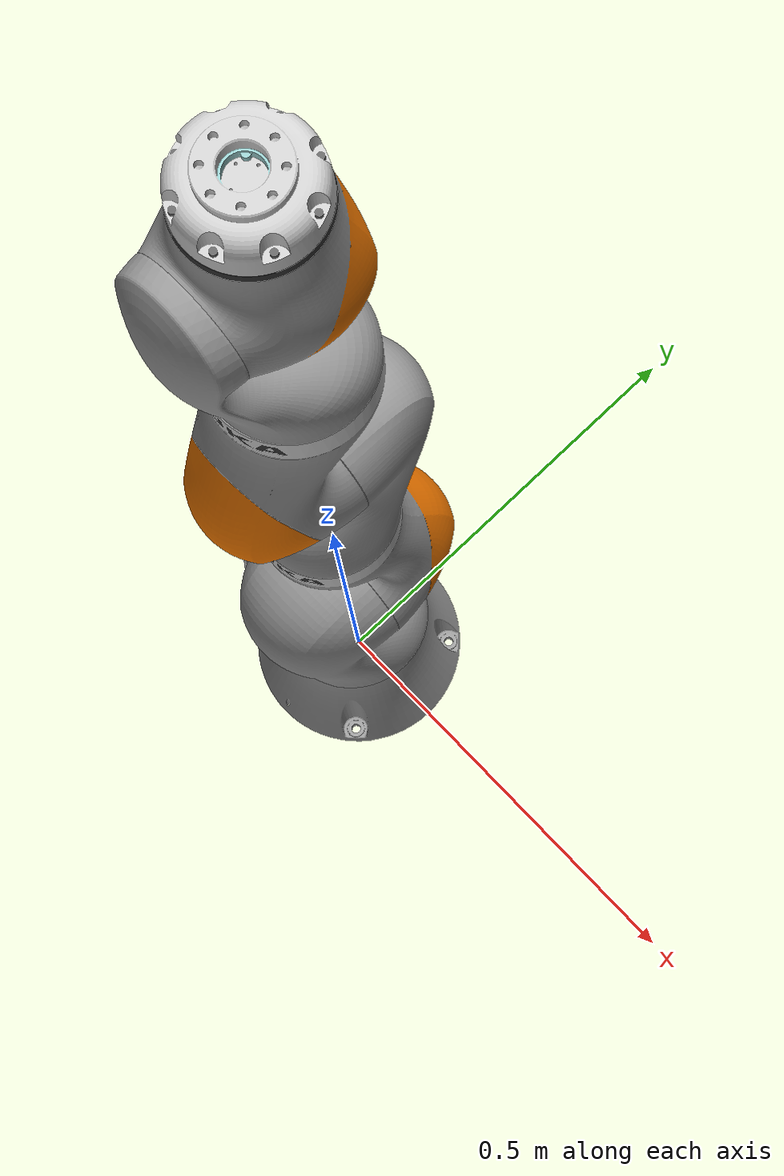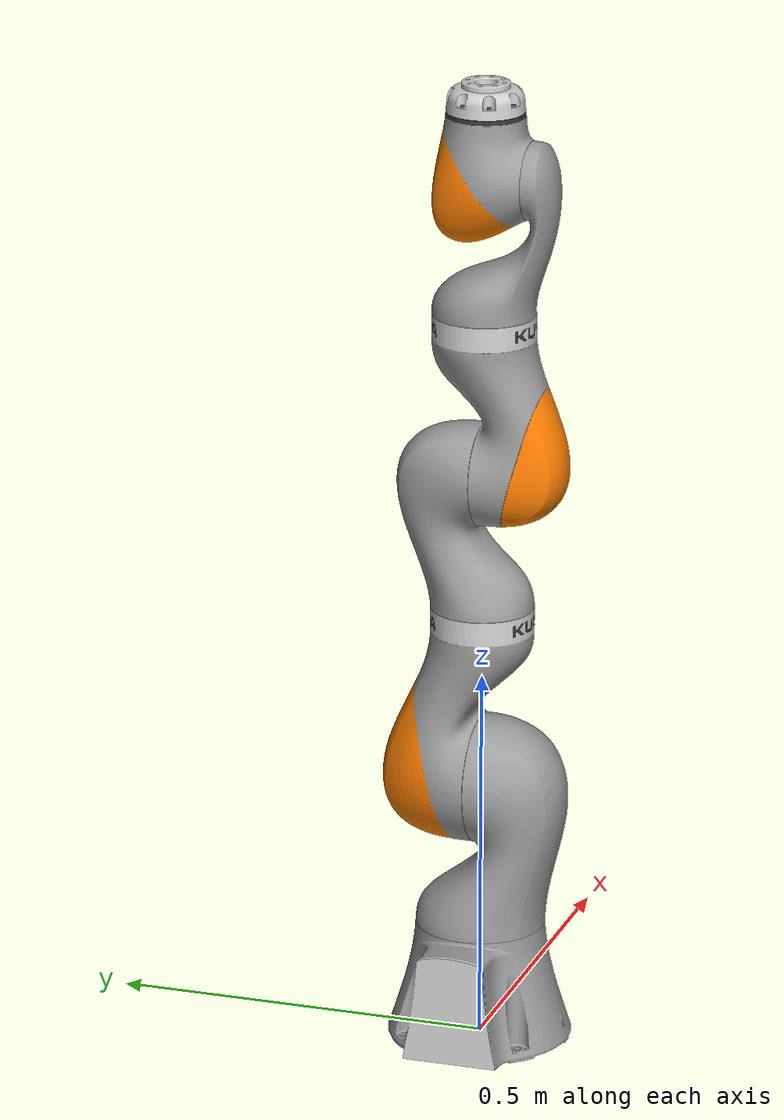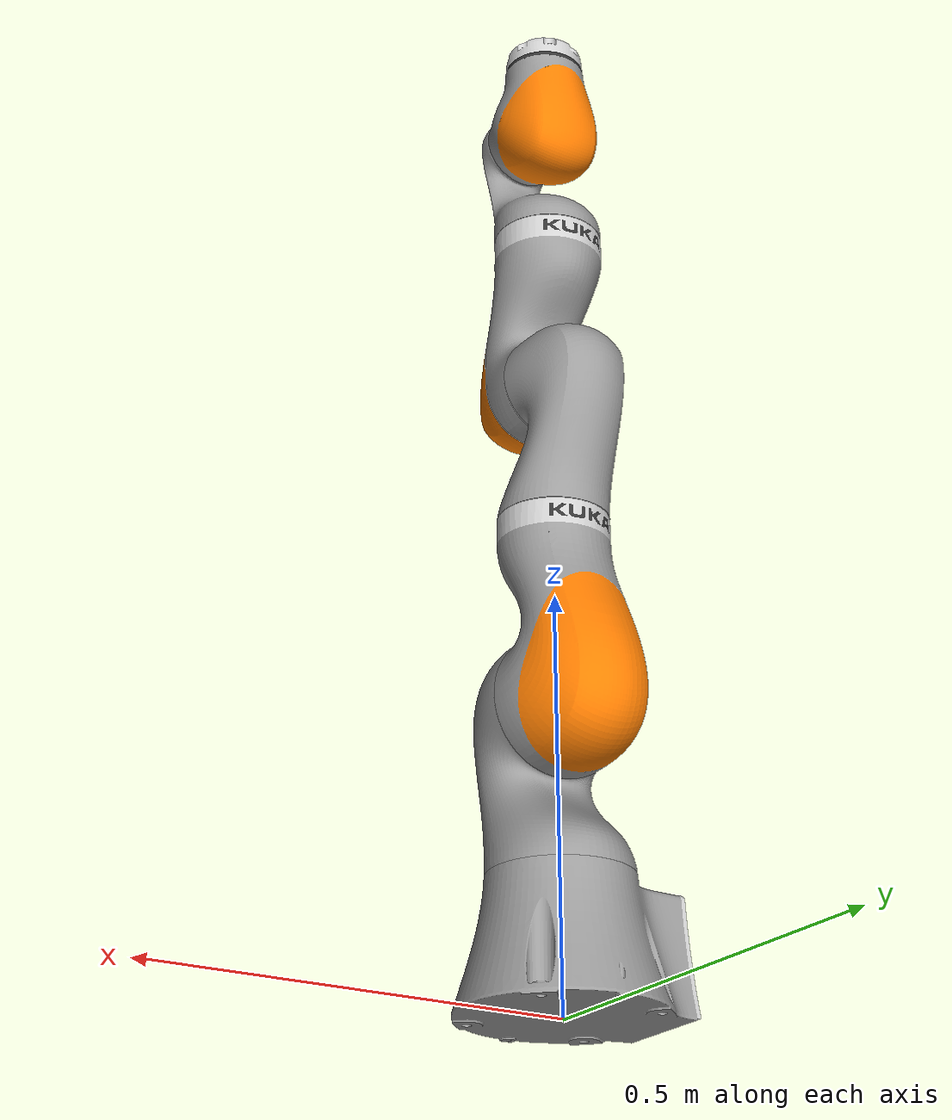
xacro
<?xml version="1.0"?>

<!-- top level -->
<robot name="iiwa14" xmlns:xacro="http://www.ros.org/wiki/xacro">

    <!-- include the iiwa macro and controller -->
    <xacro:include filename="$(find lbr_description)/urdf/iiwa14/iiwa14.urdf.xacro" />
    <xacro:include filename="$(find lbr_description)/gazebo/lbr_gazebo.xacro" />
    <xacro:include filename="$(find lbr_description)/ros2_control/lbr_system_interface.xacro" />

    <!-- arguments -->
    <xacro:arg name="robot_name" default="lbr" />
    <xacro:arg name="mode" default="true" />
    <xacro:arg
        name="joint_limits_path"
        default="$(find lbr_description)/urdf/iiwa14/joint_limits.yaml" />
    <xacro:arg
        name="system_config_path"
        default="$(find lbr_description)/ros2_control/lbr_system_config.yaml" />
    <xacro:arg
        name="initial_joint_positions_path"
        default="$(find lbr_description)/ros2_control/initial_joint_positions.yaml" />

    <!-- KDL requires a link without inertia / Gazebo requires a connection to world link or robot
    will tipple https://github.com/lbr-stack/lbr_fri_ros2_stack/issues/230 -->
    <link name="world" />

    <joint name="$(arg robot_name)_world_joint" type="fixed">
        <parent link="world" />
        <child link="$(arg robot_name)_link_0" />
    </joint>

    <!-- macros for gazebo / mock / hardware -->
    <xacro:lbr_gazebo robot_name="$(arg robot_name)" />
    <xacro:lbr_system_interface
        robot_name="$(arg robot_name)"
        mode="$(arg mode)"
        system_config_path="$(arg system_config_path)"
        initial_joint_positions_path="$(arg initial_joint_positions_path)" />

    <!-- iiwa description -->
    <xacro:iiwa14
        robot_name="$(arg robot_name)"
        joint_limits_path="$(arg joint_limits_path)" />
</robot>

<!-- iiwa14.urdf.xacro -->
<robot xmlns:xacro="http://www.ros.org/wiki/xacro">
    <!-- robot as extracted via https://github.com/syuntoku14/fusion2urdf -->
    <xacro:macro name="iiwa14"
        params="robot_name:=^|lbr joint_limits_path:=^|'$(find lbr_description)/urdf/iiwa14/joint_limits.yaml'">

        <!-- load joint limits via yaml -->
        <xacro:property name="joint_limits" value="${xacro.load_yaml(joint_limits_path)}" />

        <!-- constants -->
        <xacro:property name="PI" value="3.1415926535897931" />
        <xacro:property name="joint_damping" value="10.0" />
        <xacro:property name="joint_friction" value="0.1" />

        <!-- links and joints -->
        <link name="${robot_name}_link_0">
            <inertial>
                <origin rpy="0 0 0" xyz="-0.012822 0.0 0.071507" />
                <mass value="7.050378" />
                <inertia ixx="0.031226" ixy="0.0" ixz="0.000871" iyy="0.039697" iyz="0.0"
                    izz="0.043102" />
            </inertial>
            <visual>
                <origin rpy="0 0 0" xyz="0 0 0" />
                <geometry>
                    <mesh filename="package://lbr_description/meshes/iiwa14/visual/link_0.dae" />
                </geometry>
            </visual>
            <collision>
                <origin rpy="0 0 0" xyz="0 0 0" />
                <geometry>
                    <mesh filename="package://lbr_description/meshes/iiwa14/collision/link_0.stl" />
                </geometry>
            </collision>
        </link>

        <joint name="${robot_name}_A1" type="revolute">
            <origin rpy="0 0 0" xyz="0.0 0.0 0.1475" />
            <parent link="${robot_name}_link_0" />
            <child link="${robot_name}_link_1" />
            <axis xyz="0.0 0.0 1.0" />
            <limit
                effort="${joint_limits['A1']['effort']}"
                lower="${joint_limits['A1']['lower'] * PI / 180}"
                upper="${joint_limits['A1']['upper'] * PI / 180}"
                velocity="${joint_limits['A1']['velocity'] * PI / 180}" />
            <safety_controller
                soft_lower_limit="${joint_limits['A1']['lower'] * PI / 180}"
                soft_upper_limit="${joint_limits['A1']['upper'] * PI / 180}"
                k_position="${joint_limits['A1']['velocity'] / joint_limits['A1']['safety_position_margin']}"
                k_velocity="${joint_limits['A1']['k_velocity']}" />
            <dynamics damping="${joint_damping}" friction="${joint_friction}" />
        </joint>

        <link name="${robot_name}_link_1">
            <inertial>
                <origin rpy="0 0 0" xyz="0.0 -0.033795 0.132404" />
                <mass value="5.289529" />
                <inertia ixx="0.042462" ixy="0.0" ixz="0.0" iyy="0.042838" iyz="0.006341"
                    izz="0.01587" />
            </inertial>
            <visual>
                <origin rpy="0 0 0" xyz="0.0 0.0 -0.1475" />
                <geometry>
                    <mesh filename="package://lbr_description/meshes/iiwa14/visual/link_1.dae" />
                </geometry>
            </visual>
            <collision>
                <origin rpy="0 0 0" xyz="0.0 0.0 -0.1475" />
                <geometry>
                    <mesh filename="package://lbr_description/meshes/iiwa14/collision/link_1.stl" />
                </geometry>
            </collision>
        </link>

        <joint name="${robot_name}_A2" type="revolute">
            <origin rpy="0 0 0" xyz="0.0 -0.01 0.2125" />
            <parent link="${robot_name}_link_1" />
            <child link="${robot_name}_link_2" />
            <axis xyz="0.0 1.0 0.0" />
            <limit
                effort="${joint_limits['A2']['effort']}"
                lower="${joint_limits['A2']['lower'] * PI / 180}"
                upper="${joint_limits['A2']['upper'] * PI / 180}"
                velocity="${joint_limits['A2']['velocity'] * PI / 180}" />
            <safety_controller
                soft_lower_limit="${joint_limits['A2']['lower'] * PI / 180}"
                soft_upper_limit="${joint_limits['A2']['upper'] * PI / 180}"
                k_position="${joint_limits['A2']['velocity'] / joint_limits['A2']['safety_position_margin']}"
                k_velocity="${joint_limits['A2']['k_velocity']}" />
            <dynamics damping="${joint_damping}" friction="${joint_friction}" />
        </joint>

        <link name="${robot_name}_link_2">
            <inertial>
                <origin rpy="0 0 0" xyz="0.000136 0.047548 0.076322" />
                <mass value="5.688888" />
                <inertia ixx="0.055182" ixy="-3.3e-05" ixz="5.6e-05" iyy="0.053983" iyz="0.010034"
                    izz="0.016523" />
            </inertial>
            <visual>
                <origin rpy="0 0 0" xyz="0.0 0.01 -0.36" />
                <geometry>
                    <mesh filename="package://lbr_description/meshes/iiwa14/visual/link_2.dae" />
                </geometry>
            </visual>
            <collision>
                <origin rpy="0 0 0" xyz="0.0 0.01 -0.36" />
                <geometry>
                    <mesh filename="package://lbr_description/meshes/iiwa14/collision/link_2.stl" />
                </geometry>
            </collision>
        </link>

        <joint name="${robot_name}_A3" type="revolute">
            <origin rpy="0 0 0" xyz="0.0 0.01 0.228" />
            <parent link="${robot_name}_link_2" />
            <child link="${robot_name}_link_3" />
            <axis xyz="0.0 0.0 1.0" />
            <limit
                effort="${joint_limits['A3']['effort']}"
                lower="${joint_limits['A3']['lower'] * PI / 180}"
                upper="${joint_limits['A3']['upper'] * PI / 180}"
                velocity="${joint_limits['A3']['velocity'] * PI / 180}" />
            <safety_controller
                soft_lower_limit="${joint_limits['A3']['lower'] * PI / 180}"
                soft_upper_limit="${joint_limits['A3']['upper'] * PI / 180}"
                k_position="${joint_limits['A3']['velocity'] / joint_limits['A3']['safety_position_margin']}"
                k_velocity="${joint_limits['A3']['k_velocity']}" />
            <dynamics damping="${joint_damping}" friction="${joint_friction}" />
        </joint>

        <link name="${robot_name}_link_3">
            <inertial>
                <origin rpy="0 0 0" xyz="0.0 0.034913 0.123108" />
                <mass value="3.461245" />
                <inertia ixx="0.02172" ixy="0.0" ixz="0.0" iyy="0.02073" iyz="-0.003845"
                    izz="0.007701" />
            </inertial>
            <visual>
                <origin rpy="0 0 0" xyz="0.0 0.0 -0.588" />
                <geometry>
                    <mesh filename="package://lbr_description/meshes/iiwa14/visual/link_3.dae" />
                </geometry>
            </visual>
            <collision>
                <origin rpy="0 0 0" xyz="0.0 0.0 -0.588" />
                <geometry>
                    <mesh filename="package://lbr_description/meshes/iiwa14/collision/link_3.stl" />
                </geometry>
            </collision>
        </link>

        <joint name="${robot_name}_A4" type="revolute">
            <origin rpy="0 0 0" xyz="0.0 0.0105 0.192" />
            <parent link="${robot_name}_link_3" />
            <child link="${robot_name}_link_4" />
            <axis xyz="0.0 -1.0 0.0" />
            <limit
                effort="${joint_limits['A4']['effort']}"
                lower="${joint_limits['A4']['lower'] * PI / 180}"
                upper="${joint_limits['A4']['upper'] * PI / 180}"
                velocity="${joint_limits['A4']['velocity'] * PI / 180}" />
            <safety_controller
                soft_lower_limit="${joint_limits['A4']['lower'] * PI / 180}"
                soft_upper_limit="${joint_limits['A4']['upper'] * PI / 180}"
                k_position="${joint_limits['A4']['velocity'] / joint_limits['A4']['safety_position_margin']}"
                k_velocity="${joint_limits['A4']['k_velocity']}" />
            <dynamics damping="${joint_damping}" friction="${joint_friction}" />
        </joint>

        <link name="${robot_name}_link_4">
            <inertial>
                <origin rpy="0 0 0" xyz="0.0 -0.039793 0.086944" />
                <mass value="4.122995" />
                <inertia ixx="0.03241" ixy="0.0" ixz="0.0" iyy="0.030758" iyz="-0.006022"
                    izz="0.009883" />
            </inertial>
            <visual>
                <origin rpy="0 0 0" xyz="0.0 -0.0105 -0.78" />
                <geometry>
                    <mesh filename="package://lbr_description/meshes/iiwa14/visual/link_4.dae" />
                </geometry>
            </visual>
            <collision>
                <origin rpy="0 0 0" xyz="0.0 -0.0105 -0.78" />
                <geometry>
                    <mesh filename="package://lbr_description/meshes/iiwa14/collision/link_4.stl" />
                </geometry>
            </collision>
        </link>

        <joint name="${robot_name}_A5" type="revolute">
            <origin rpy="0 0 0" xyz="0.0 -0.0105 0.2075" />
            <parent link="${robot_name}_link_4" />
            <child link="${robot_name}_link_5" />
            <axis xyz="0.0 0.0 1.0" />
            <limit
                effort="${joint_limits['A5']['effort']}"
                lower="${joint_limits['A5']['lower'] * PI / 180}"
                upper="${joint_limits['A5']['upper'] * PI / 180}"
                velocity="${joint_limits['A5']['velocity'] * PI / 180}" />
            <safety_controller
                soft_lower_limit="${joint_limits['A5']['lower'] * PI / 180}"
                soft_upper_limit="${joint_limits['A5']['upper'] * PI / 180}"
                k_position="${joint_limits['A5']['velocity'] / joint_limits['A5']['safety_position_margin']}"
                k_velocity="${joint_limits['A5']['k_velocity']}" />
            <dynamics damping="${joint_damping}" friction="${joint_friction}" />
        </joint>

        <link name="${robot_name}_link_5">
            <inertial>
                <origin rpy="0 0 0" xyz="0.0 -0.029824 0.076267" />
                <mass value="1.563756" />
                <inertia ixx="0.008677" ixy="0.0" ixz="0.0" iyy="0.007297" iyz="0.002869"
                    izz="0.003935" />
            </inertial>
            <visual>
                <origin rpy="0 0 0" xyz="0.0 0.0 -0.9875" />
                <geometry>
                    <mesh filename="package://lbr_description/meshes/iiwa14/visual/link_5.dae" />
                </geometry>
            </visual>
            <collision>
                <origin rpy="0 0 0" xyz="0.0 0.0 -0.9875" />
                <geometry>
                    <mesh filename="package://lbr_description/meshes/iiwa14/collision/link_5.stl" />
                </geometry>
            </collision>
        </link>

        <joint name="${robot_name}_A6" type="revolute">
            <origin rpy="0 0 0" xyz="0.0 -0.0707 0.1925" />
            <parent link="${robot_name}_link_5" />
            <child link="${robot_name}_link_6" />
            <axis xyz="0.0 1.0 0.0" />
            <limit
                effort="${joint_limits['A6']['effort']}"
                lower="${joint_limits['A6']['lower'] * PI / 180}"
                upper="${joint_limits['A6']['upper'] * PI / 180}"
                velocity="${joint_limits['A6']['velocity'] * PI / 180}" />
            <safety_controller
                soft_lower_limit="${joint_limits['A6']['lower'] * PI / 180}"
                soft_upper_limit="${joint_limits['A6']['upper'] * PI / 180}"
                k_position="${joint_limits['A6']['velocity'] / joint_limits['A6']['safety_position_margin']}"
                k_velocity="${joint_limits['A6']['k_velocity']}" />
            <dynamics damping="${joint_damping}" friction="${joint_friction}" />
        </joint>

        <link name="${robot_name}_link_6">
            <inertial>
                <origin rpy="0 0 0" xyz="0.0 0.07102 0.00495" />
                <mass value="2.457878" />
                <inertia ixx="0.007227" ixy="0.0" ixz="0.0" iyy="0.006958" iyz="0.000318"
                    izz="0.004734" />
            </inertial>
            <visual>
                <origin rpy="0 0 0" xyz="0.0 0.0707 -1.18" />
                <geometry>
                    <mesh filename="package://lbr_description/meshes/iiwa14/visual/link_6.dae" />
                </geometry>
            </visual>
            <collision>
                <origin rpy="0 0 0" xyz="0.0 0.0707 -1.18" />
                <geometry>
                    <mesh filename="package://lbr_description/meshes/iiwa14/collision/link_6.stl" />
                </geometry>
            </collision>
        </link>

        <joint name="${robot_name}_A7" type="revolute">
            <origin rpy="0 0 0" xyz="0.0 0.0707 0.091" />
            <parent link="${robot_name}_link_6" />
            <child link="${robot_name}_link_7" />
            <axis xyz="0.0 0.0 1.0" />
            <limit
                effort="${joint_limits['A7']['effort']}"
                lower="${joint_limits['A7']['lower'] * PI / 180}"
                upper="${joint_limits['A7']['upper'] * PI / 180}"
                velocity="${joint_limits['A7']['velocity'] * PI / 180}" />
            <safety_controller
                soft_lower_limit="${joint_limits['A7']['lower'] * PI / 180}"
                soft_upper_limit="${joint_limits['A7']['upper'] * PI / 180}"
                k_position="${joint_limits['A7']['velocity'] / joint_limits['A7']['safety_position_margin']}"
                k_velocity="${joint_limits['A7']['k_velocity']}" />
            <dynamics damping="${joint_damping}" friction="${joint_friction}" />
        </joint>

        <link name="${robot_name}_link_7">
            <inertial>
                <origin rpy="0 0 0" xyz="3.0000e-06 -2.0000e-06 1.3782e-02" />
                <mass value="0.265331" />
                <inertia ixx="0.000175" ixy="0.0" ixz="0.0" iyy="0.000175" iyz="0.0" izz="0.000306" />
            </inertial>
            <visual>
                <origin rpy="0 0 0" xyz="0.0 0.0 -1.271" />
                <geometry>
                    <mesh filename="package://lbr_description/meshes/iiwa14/visual/link_7.dae" />
                </geometry>
            </visual>
            <collision>
                <origin rpy="0 0 0" xyz="0.0 0.0 -1.271" />
                <geometry>
                    <mesh filename="package://lbr_description/meshes/iiwa14/collision/link_7.stl" />
                </geometry>
            </collision>
        </link>

        <joint name="${robot_name}_joint_ee" type="fixed">
            <parent link="${robot_name}_link_7" />
            <child link="${robot_name}_link_ee" />
            <origin xyz="0 0 0.035" rpy="0 0 0" />
        </joint>

        <link name="${robot_name}_link_ee">
        </link>
    </xacro:macro>
</robot>
